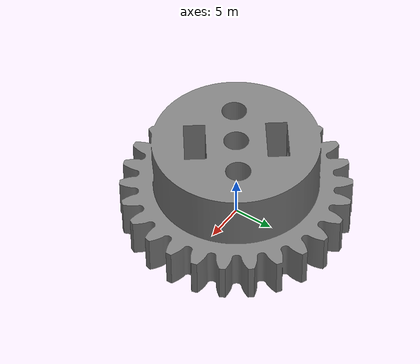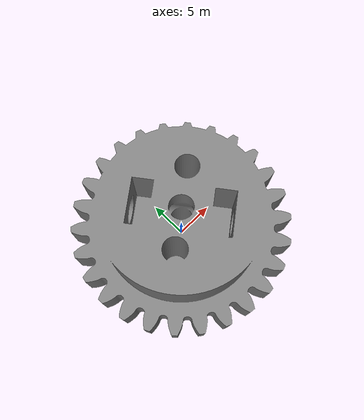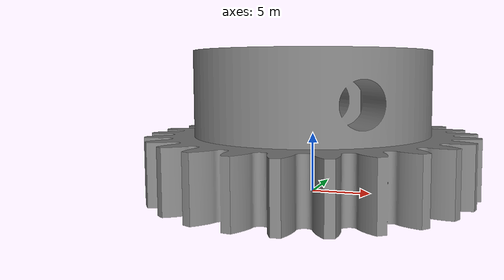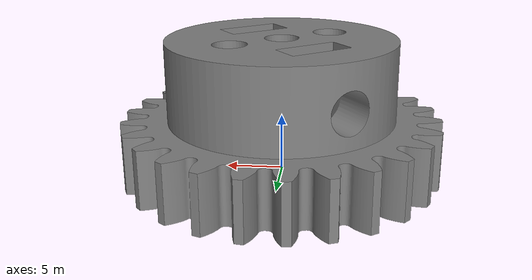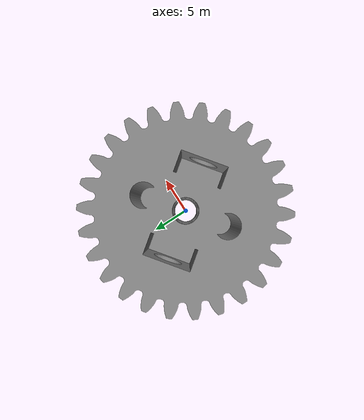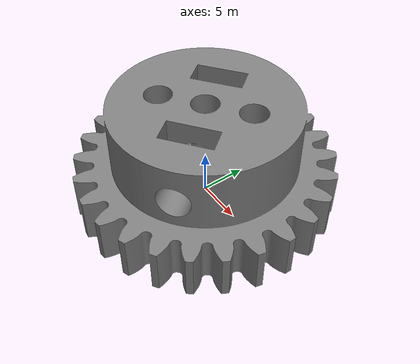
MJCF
<mujoco model="FabConvert.com_gear_1">
  <default>
    <default class="visual">
      <geom group="2" type="mesh" contype="0" conaffinity="0"/>
    </default>
    <default class="collision">
      <geom group="3" type="mesh"/>
    </default>
  </default>
  <asset>
    <mesh file="FabConvert.com_gear_1.obj"/>
  </asset>
  <worldbody>
    <body name="FabConvert.com_gear_1">
      <geom mesh="FabConvert.com_gear_1" class="visual"/>
      <geom mesh="FabConvert.com_gear_1" class="collision"/>
    </body>
  </worldbody>
</mujoco>
